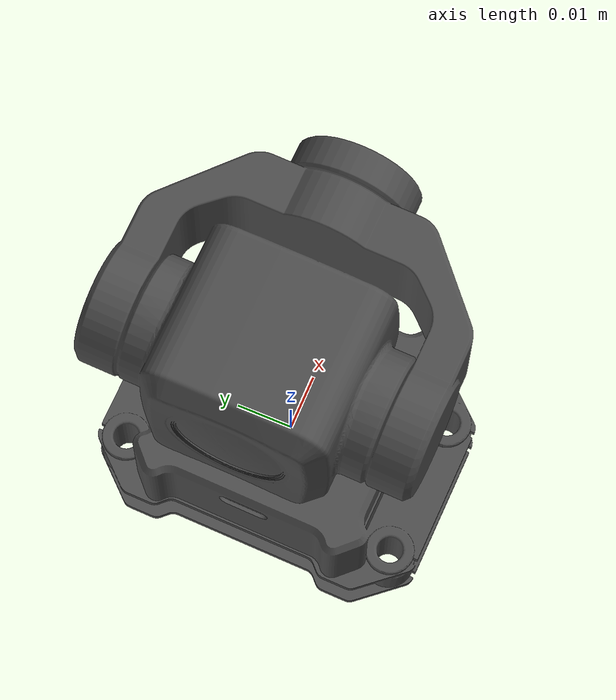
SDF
<?xml version="1.0" ?>
<sdf version="1.6">
  <model name="rig_camera">
    <static>true</static>
    <link name="camera_link">
      <pose>0 0 0 0 0 0</pose>
      <inertial>
        <mass>0.095</mass>
        <inertia>
          <ixx>6.5e-05</ixx>
          <ixy>0</ixy>
          <ixz>0</ixz>
          <iyy>6.5e-05</iyy>
          <iyz>0</iyz>
          <izz>4.8e-05</izz>
        </inertia>
      </inertial>

      <collision name="camera_collision">
        <geometry>
          <box>
            <size>0.052 0.061 0.084</size>
          </box>
        </geometry>
      </collision>

      <visual name="camera_visual">
        <geometry>
          <mesh>
            <uri>model://iris_vlp16_cam/meshes/siyi_a8_mini.stl</uri>
            <scale>1 1 1</scale>
          </mesh>
        </geometry>
        <material>
          <script>
            <name>Gazebo/DarkGrey</name>
            <uri>file://media/materials/scripts/gazebo.material</uri>
          </script>
        </material>
      </visual>

      <sensor name="camera" type="camera">
        <pose>0 0 0 3.1415927 0.2617994 0</pose>
        <always_on>1</always_on>
        <update_rate>15</update_rate>
        <visualize>false</visualize>
        <camera name="a8_mini">
          <horizontal_fov>1.4137</horizontal_fov>
          <image>
            <width>640</width>
            <height>480</height>
            <format>R8G8B8</format>
          </image>
          <clip>
            <near>0.05</near>
            <far>100</far>
          </clip>
          <noise>
            <type>gaussian</type>
            <mean>0.0</mean>
            <stddev>0.007</stddev>
          </noise>
        </camera>
        <plugin name="camera_controller" filename="libgazebo_ros_camera.so">
          <alwaysOn>true</alwaysOn>
          <updateRate>15</updateRate>
          <cameraName>camera</cameraName>
          <imageTopicName>image_raw</imageTopicName>
          <cameraInfoTopicName>camera_info</cameraInfoTopicName>
          <frameName>camera_link</frameName>
          <hackBaseline>0.0</hackBaseline>
          <distortionK1>0.0</distortionK1>
          <distortionK2>0.0</distortionK2>
          <distortionK3>0.0</distortionK3>
          <distortionT1>0.0</distortionT1>
          <distortionT2>0.0</distortionT2>
        </plugin>
      </sensor>
    </link>
  </model>
</sdf>
